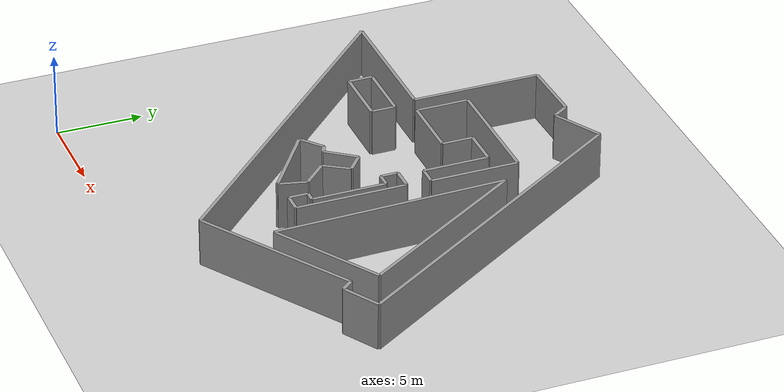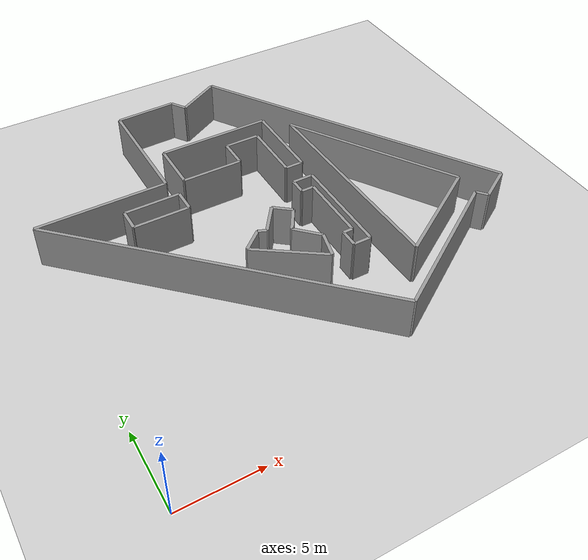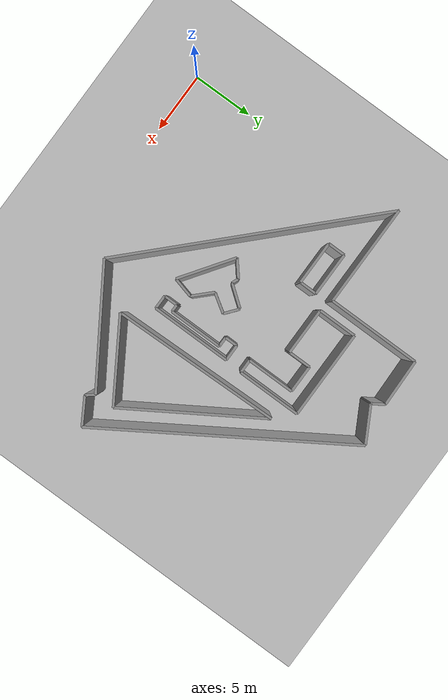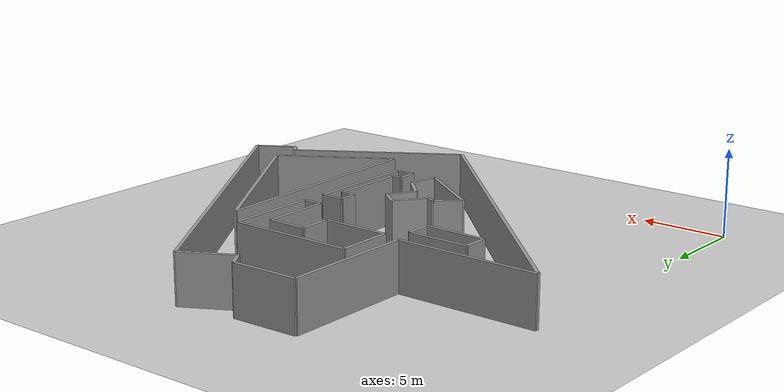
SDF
<?xml version="1.0" ?>

    <!-- this file is auto generated using pedsim_gazebo_plugin pkg -->
    <sdf version="1.5">
      <world name="default">

      <!-- Ground Plane -->

      <include>
        <uri>model://ground_plane</uri>
      </include>

      <include>
        <uri>model://sun</uri>
      </include>

     <model name='grey_wall_1'>
      <static>1</static>
      <link name='link'>

	  <pose frame=''>19.8 5.9  1.4 0 0 0.571337479834</pose>

        <collision name='collision'>
          <geometry>
            <box>

	     <size> 9.98599018626 .2  2.8 </size>

      	   </box>
          </geometry>
          <max_contacts>10</max_contacts>
          <surface>
            <contact>
              <ode/>
            </contact>
            <bounce/>
            <friction>
              <torsional>
                <ode/>
              </torsional>
              <ode/>
            </friction>
          </surface>
        </collision>
        <visual name='visual'>
          <cast_shadows>0</cast_shadows>
          <geometry>
            <box>

	     <size> 9.98599018626 .2  2.8 </size>

      	   </box>
       </geometry>
          <material>
            <script>
              <uri>model://grey_wall/materials/scripts</uri>
              <uri>model://grey_wall/materials/textures</uri>
              <name>vrc/grey_wall</name>
            </script>
          </material>
        </visual>
        <self_collide>0</self_collide>
        <enable_wind>0</enable_wind>
        <kinematic>0</kinematic>
      </link>
    </model>

     <model name='grey_wall_2'>
      <static>1</static>
      <link name='link'>

	  <pose frame=''>24.25 8.3  1.4 0 0 -0.876058050598</pose>

        <collision name='collision'>
          <geometry>
            <box>

	     <size> 0.781024967591 .2  2.8 </size>

      	   </box>
          </geometry>
          <max_contacts>10</max_contacts>
          <surface>
            <contact>
              <ode/>
            </contact>
            <bounce/>
            <friction>
              <torsional>
                <ode/>
              </torsional>
              <ode/>
            </friction>
          </surface>
        </collision>
        <visual name='visual'>
          <cast_shadows>0</cast_shadows>
          <geometry>
            <box>

	     <size> 0.781024967591 .2  2.8 </size>

      	   </box>
       </geometry>
          <material>
            <script>
              <uri>model://grey_wall/materials/scripts</uri>
              <uri>model://grey_wall/materials/textures</uri>
              <name>vrc/grey_wall</name>
            </script>
          </material>
        </visual>
        <self_collide>0</self_collide>
        <enable_wind>0</enable_wind>
        <kinematic>0</kinematic>
      </link>
    </model>

     <model name='grey_wall_3'>
      <static>1</static>
      <link name='link'>

	  <pose frame=''>25.5 8.6  1.4 0 0 0.540419500271</pose>

        <collision name='collision'>
          <geometry>
            <box>

	     <size> 2.33238075794 .2  2.8 </size>

      	   </box>
          </geometry>
          <max_contacts>10</max_contacts>
          <surface>
            <contact>
              <ode/>
            </contact>
            <bounce/>
            <friction>
              <torsional>
                <ode/>
              </torsional>
              <ode/>
            </friction>
          </surface>
        </collision>
        <visual name='visual'>
          <cast_shadows>0</cast_shadows>
          <geometry>
            <box>

	     <size> 2.33238075794 .2  2.8 </size>

      	   </box>
       </geometry>
          <material>
            <script>
              <uri>model://grey_wall/materials/scripts</uri>
              <uri>model://grey_wall/materials/textures</uri>
              <name>vrc/grey_wall</name>
            </script>
          </material>
        </visual>
        <self_collide>0</self_collide>
        <enable_wind>0</enable_wind>
        <kinematic>0</kinematic>
      </link>
    </model>

     <model name='grey_wall_4'>
      <static>1</static>
      <link name='link'>

	  <pose frame=''>20.9 17.95  1.4 0 0 -1.00148313569</pose>

        <collision name='collision'>
          <geometry>
            <box>

	     <size> 20.7771509115 .2  2.8 </size>

      	   </box>
          </geometry>
          <max_contacts>10</max_contacts>
          <surface>
            <contact>
              <ode/>
            </contact>
            <bounce/>
            <friction>
              <torsional>
                <ode/>
              </torsional>
              <ode/>
            </friction>
          </surface>
        </collision>
        <visual name='visual'>
          <cast_shadows>0</cast_shadows>
          <geometry>
            <box>

	     <size> 20.7771509115 .2  2.8 </size>

      	   </box>
       </geometry>
          <material>
            <script>
              <uri>model://grey_wall/materials/scripts</uri>
              <uri>model://grey_wall/materials/textures</uri>
              <name>vrc/grey_wall</name>
            </script>
          </material>
        </visual>
        <self_collide>0</self_collide>
        <enable_wind>0</enable_wind>
        <kinematic>0</kinematic>
      </link>
    </model>

     <model name='grey_wall_5'>
      <static>1</static>
      <link name='link'>

	  <pose frame=''>13.95 25.95  1.4 0 0 0.507098504392</pose>

        <collision name='collision'>
          <geometry>
            <box>

	     <size> 3.0886890423 .2  2.8 </size>

      	   </box>
          </geometry>
          <max_contacts>10</max_contacts>
          <surface>
            <contact>
              <ode/>
            </contact>
            <bounce/>
            <friction>
              <torsional>
                <ode/>
              </torsional>
              <ode/>
            </friction>
          </surface>
        </collision>
        <visual name='visual'>
          <cast_shadows>0</cast_shadows>
          <geometry>
            <box>

	     <size> 3.0886890423 .2  2.8 </size>

      	   </box>
       </geometry>
          <material>
            <script>
              <uri>model://grey_wall/materials/scripts</uri>
              <uri>model://grey_wall/materials/textures</uri>
              <name>vrc/grey_wall</name>
            </script>
          </material>
        </visual>
        <self_collide>0</self_collide>
        <enable_wind>0</enable_wind>
        <kinematic>0</kinematic>
      </link>
    </model>

     <model name='grey_wall_6'>
      <static>1</static>
      <link name='link'>

	  <pose frame=''>12.3 25.65  1.4 0 0 -0.982793723247</pose>

        <collision name='collision'>
          <geometry>
            <box>

	     <size> 1.08166538264 .2  2.8 </size>

      	   </box>
          </geometry>
          <max_contacts>10</max_contacts>
          <surface>
            <contact>
              <ode/>
            </contact>
            <bounce/>
            <friction>
              <torsional>
                <ode/>
              </torsional>
              <ode/>
            </friction>
          </surface>
        </collision>
        <visual name='visual'>
          <cast_shadows>0</cast_shadows>
          <geometry>
            <box>

	     <size> 1.08166538264 .2  2.8 </size>

      	   </box>
       </geometry>
          <material>
            <script>
              <uri>model://grey_wall/materials/scripts</uri>
              <uri>model://grey_wall/materials/textures</uri>
              <name>vrc/grey_wall</name>
            </script>
          </material>
        </visual>
        <self_collide>0</self_collide>
        <enable_wind>0</enable_wind>
        <kinematic>0</kinematic>
      </link>
    </model>

     <model name='grey_wall_7'>
      <static>1</static>
      <link name='link'>

	  <pose frame=''>10.1 26.05  1.4 0 0 0.0263097172529</pose>

        <collision name='collision'>
          <geometry>
            <box>

	     <size> 3.80131556175 .2  2.8 </size>

      	   </box>
          </geometry>
          <max_contacts>10</max_contacts>
          <surface>
            <contact>
              <ode/>
            </contact>
            <bounce/>
            <friction>
              <torsional>
                <ode/>
              </torsional>
              <ode/>
            </friction>
          </surface>
        </collision>
        <visual name='visual'>
          <cast_shadows>0</cast_shadows>
          <geometry>
            <box>

	     <size> 3.80131556175 .2  2.8 </size>

      	   </box>
       </geometry>
          <material>
            <script>
              <uri>model://grey_wall/materials/scripts</uri>
              <uri>model://grey_wall/materials/textures</uri>
              <name>vrc/grey_wall</name>
            </script>
          </material>
        </visual>
        <self_collide>0</self_collide>
        <enable_wind>0</enable_wind>
        <kinematic>0</kinematic>
      </link>
    </model>

     <model name='grey_wall_8'>
      <static>1</static>
      <link name='link'>

	  <pose frame=''>8.2 22.25  1.4 0 0 1.57</pose>

        <collision name='collision'>
          <geometry>
            <box>

	     <size> 7.5 .2  2.8 </size>

      	   </box>
          </geometry>
          <max_contacts>10</max_contacts>
          <surface>
            <contact>
              <ode/>
            </contact>
            <bounce/>
            <friction>
              <torsional>
                <ode/>
              </torsional>
              <ode/>
            </friction>
          </surface>
        </collision>
        <visual name='visual'>
          <cast_shadows>0</cast_shadows>
          <geometry>
            <box>

	     <size> 7.5 .2  2.8 </size>

      	   </box>
       </geometry>
          <material>
            <script>
              <uri>model://grey_wall/materials/scripts</uri>
              <uri>model://grey_wall/materials/textures</uri>
              <name>vrc/grey_wall</name>
            </script>
          </material>
        </visual>
        <self_collide>0</self_collide>
        <enable_wind>0</enable_wind>
        <kinematic>0</kinematic>
      </link>
    </model>

     <model name='grey_wall_9'>
      <static>1</static>
      <link name='link'>

	  <pose frame=''>4.1 18.5  1.4 0 0 0.0</pose>

        <collision name='collision'>
          <geometry>
            <box>

	     <size> 8.2 .2  2.8 </size>

      	   </box>
          </geometry>
          <max_contacts>10</max_contacts>
          <surface>
            <contact>
              <ode/>
            </contact>
            <bounce/>
            <friction>
              <torsional>
                <ode/>
              </torsional>
              <ode/>
            </friction>
          </surface>
        </collision>
        <visual name='visual'>
          <cast_shadows>0</cast_shadows>
          <geometry>
            <box>

	     <size> 8.2 .2  2.8 </size>

      	   </box>
       </geometry>
          <material>
            <script>
              <uri>model://grey_wall/materials/scripts</uri>
              <uri>model://grey_wall/materials/textures</uri>
              <name>vrc/grey_wall</name>
            </script>
          </material>
        </visual>
        <self_collide>0</self_collide>
        <enable_wind>0</enable_wind>
        <kinematic>0</kinematic>
      </link>
    </model>

     <model name='grey_wall_10'>
      <static>1</static>
      <link name='link'>

	  <pose frame=''>7.8 10.85  1.4 0 0 -0.775689730563</pose>

        <collision name='collision'>
          <geometry>
            <box>

	     <size> 21.8506292816 .2  2.8 </size>

      	   </box>
          </geometry>
          <max_contacts>10</max_contacts>
          <surface>
            <contact>
              <ode/>
            </contact>
            <bounce/>
            <friction>
              <torsional>
                <ode/>
              </torsional>
              <ode/>
            </friction>
          </surface>
        </collision>
        <visual name='visual'>
          <cast_shadows>0</cast_shadows>
          <geometry>
            <box>

	     <size> 21.8506292816 .2  2.8 </size>

      	   </box>
       </geometry>
          <material>
            <script>
              <uri>model://grey_wall/materials/scripts</uri>
              <uri>model://grey_wall/materials/textures</uri>
              <name>vrc/grey_wall</name>
            </script>
          </material>
        </visual>
        <self_collide>0</self_collide>
        <enable_wind>0</enable_wind>
        <kinematic>0</kinematic>
      </link>
    </model>

     <model name='grey_wall_11'>
      <static>1</static>
      <link name='link'>

	  <pose frame=''>13.9 9.1  1.4 0 0 1.32581766367</pose>

        <collision name='collision'>
          <geometry>
            <box>

	     <size> 1.64924225025 .2  2.8 </size>

      	   </box>
          </geometry>
          <max_contacts>10</max_contacts>
          <surface>
            <contact>
              <ode/>
            </contact>
            <bounce/>
            <friction>
              <torsional>
                <ode/>
              </torsional>
              <ode/>
            </friction>
          </surface>
        </collision>
        <visual name='visual'>
          <cast_shadows>0</cast_shadows>
          <geometry>
            <box>

	     <size> 1.64924225025 .2  2.8 </size>

      	   </box>
       </geometry>
          <material>
            <script>
              <uri>model://grey_wall/materials/scripts</uri>
              <uri>model://grey_wall/materials/textures</uri>
              <name>vrc/grey_wall</name>
            </script>
          </material>
        </visual>
        <self_collide>0</self_collide>
        <enable_wind>0</enable_wind>
        <kinematic>0</kinematic>
      </link>
    </model>

     <model name='grey_wall_12'>
      <static>1</static>
      <link name='link'>

	  <pose frame=''>13.45 10.55  1.4 0 0 -0.785398163397</pose>

        <collision name='collision'>
          <geometry>
            <box>

	     <size> 1.83847763109 .2  2.8 </size>

      	   </box>
          </geometry>
          <max_contacts>10</max_contacts>
          <surface>
            <contact>
              <ode/>
            </contact>
            <bounce/>
            <friction>
              <torsional>
                <ode/>
              </torsional>
              <ode/>
            </friction>
          </surface>
        </collision>
        <visual name='visual'>
          <cast_shadows>0</cast_shadows>
          <geometry>
            <box>

	     <size> 1.83847763109 .2  2.8 </size>

      	   </box>
       </geometry>
          <material>
            <script>
              <uri>model://grey_wall/materials/scripts</uri>
              <uri>model://grey_wall/materials/textures</uri>
              <name>vrc/grey_wall</name>
            </script>
          </material>
        </visual>
        <self_collide>0</self_collide>
        <enable_wind>0</enable_wind>
        <kinematic>0</kinematic>
      </link>
    </model>

     <model name='grey_wall_13'>
      <static>1</static>
      <link name='link'>

	  <pose frame=''>13.25 11.9  1.4 0 0 0.999458846961</pose>

        <collision name='collision'>
          <geometry>
            <box>

	     <size> 1.66433169771 .2  2.8 </size>

      	   </box>
          </geometry>
          <max_contacts>10</max_contacts>
          <surface>
            <contact>
              <ode/>
            </contact>
            <bounce/>
            <friction>
              <torsional>
                <ode/>
              </torsional>
              <ode/>
            </friction>
          </surface>
        </collision>
        <visual name='visual'>
          <cast_shadows>0</cast_shadows>
          <geometry>
            <box>

	     <size> 1.66433169771 .2  2.8 </size>

      	   </box>
       </geometry>
          <material>
            <script>
              <uri>model://grey_wall/materials/scripts</uri>
              <uri>model://grey_wall/materials/textures</uri>
              <name>vrc/grey_wall</name>
            </script>
          </material>
        </visual>
        <self_collide>0</self_collide>
        <enable_wind>0</enable_wind>
        <kinematic>0</kinematic>
      </link>
    </model>

     <model name='grey_wall_14'>
      <static>1</static>
      <link name='link'>

	  <pose frame=''>13.2 13.0  1.4 0 0 -0.674740942224</pose>

        <collision name='collision'>
          <geometry>
            <box>

	     <size> 1.28062484749 .2  2.8 </size>

      	   </box>
          </geometry>
          <max_contacts>10</max_contacts>
          <surface>
            <contact>
              <ode/>
            </contact>
            <bounce/>
            <friction>
              <torsional>
                <ode/>
              </torsional>
              <ode/>
            </friction>
          </surface>
        </collision>
        <visual name='visual'>
          <cast_shadows>0</cast_shadows>
          <geometry>
            <box>

	     <size> 1.28062484749 .2  2.8 </size>

      	   </box>
       </geometry>
          <material>
            <script>
              <uri>model://grey_wall/materials/scripts</uri>
              <uri>model://grey_wall/materials/textures</uri>
              <name>vrc/grey_wall</name>
            </script>
          </material>
        </visual>
        <self_collide>0</self_collide>
        <enable_wind>0</enable_wind>
        <kinematic>0</kinematic>
      </link>
    </model>

     <model name='grey_wall_15'>
      <static>1</static>
      <link name='link'>

	  <pose frame=''>12.1 12.6  1.4 0 0 0.927295218002</pose>

        <collision name='collision'>
          <geometry>
            <box>

	     <size> 2.0 .2  2.8 </size>

      	   </box>
          </geometry>
          <max_contacts>10</max_contacts>
          <surface>
            <contact>
              <ode/>
            </contact>
            <bounce/>
            <friction>
              <torsional>
                <ode/>
              </torsional>
              <ode/>
            </friction>
          </surface>
        </collision>
        <visual name='visual'>
          <cast_shadows>0</cast_shadows>
          <geometry>
            <box>

	     <size> 2.0 .2  2.8 </size>

      	   </box>
       </geometry>
          <material>
            <script>
              <uri>model://grey_wall/materials/scripts</uri>
              <uri>model://grey_wall/materials/textures</uri>
              <name>vrc/grey_wall</name>
            </script>
          </material>
        </visual>
        <self_collide>0</self_collide>
        <enable_wind>0</enable_wind>
        <kinematic>0</kinematic>
      </link>
    </model>

     <model name='grey_wall_16'>
      <static>1</static>
      <link name='link'>

	  <pose frame=''>11.25 11.9  1.4 0 0 -0.380506377112</pose>

        <collision name='collision'>
          <geometry>
            <box>

	     <size> 0.538516480713 .2  2.8 </size>

      	   </box>
          </geometry>
          <max_contacts>10</max_contacts>
          <surface>
            <contact>
              <ode/>
            </contact>
            <bounce/>
            <friction>
              <torsional>
                <ode/>
              </torsional>
              <ode/>
            </friction>
          </surface>
        </collision>
        <visual name='visual'>
          <cast_shadows>0</cast_shadows>
          <geometry>
            <box>

	     <size> 0.538516480713 .2  2.8 </size>

      	   </box>
       </geometry>
          <material>
            <script>
              <uri>model://grey_wall/materials/scripts</uri>
              <uri>model://grey_wall/materials/textures</uri>
              <name>vrc/grey_wall</name>
            </script>
          </material>
        </visual>
        <self_collide>0</self_collide>
        <enable_wind>0</enable_wind>
        <kinematic>0</kinematic>
      </link>
    </model>

     <model name='grey_wall_17'>
      <static>1</static>
      <link name='link'>

	  <pose frame=''>10.4 11.5  1.4 0 0 0.694738276197</pose>

        <collision name='collision'>
          <geometry>
            <box>

	     <size> 1.56204993518 .2  2.8 </size>

      	   </box>
          </geometry>
          <max_contacts>10</max_contacts>
          <surface>
            <contact>
              <ode/>
            </contact>
            <bounce/>
            <friction>
              <torsional>
                <ode/>
              </torsional>
              <ode/>
            </friction>
          </surface>
        </collision>
        <visual name='visual'>
          <cast_shadows>0</cast_shadows>
          <geometry>
            <box>

	     <size> 1.56204993518 .2  2.8 </size>

      	   </box>
       </geometry>
          <material>
            <script>
              <uri>model://grey_wall/materials/scripts</uri>
              <uri>model://grey_wall/materials/textures</uri>
              <name>vrc/grey_wall</name>
            </script>
          </material>
        </visual>
        <self_collide>0</self_collide>
        <enable_wind>0</enable_wind>
        <kinematic>0</kinematic>
      </link>
    </model>

     <model name='grey_wall_18'>
      <static>1</static>
      <link name='link'>

	  <pose frame=''>11.75 9.65  1.4 0 0 -0.605544663605</pose>

        <collision name='collision'>
          <geometry>
            <box>

	     <size> 4.74341649025 .2  2.8 </size>

      	   </box>
          </geometry>
          <max_contacts>10</max_contacts>
          <surface>
            <contact>
              <ode/>
            </contact>
            <bounce/>
            <friction>
              <torsional>
                <ode/>
              </torsional>
              <ode/>
            </friction>
          </surface>
        </collision>
        <visual name='visual'>
          <cast_shadows>0</cast_shadows>
          <geometry>
            <box>

	     <size> 4.74341649025 .2  2.8 </size>

      	   </box>
       </geometry>
          <material>
            <script>
              <uri>model://grey_wall/materials/scripts</uri>
              <uri>model://grey_wall/materials/textures</uri>
              <name>vrc/grey_wall</name>
            </script>
          </material>
        </visual>
        <self_collide>0</self_collide>
        <enable_wind>0</enable_wind>
        <kinematic>0</kinematic>
      </link>
    </model>

     <model name='grey_wall_19'>
      <static>1</static>
      <link name='link'>

	  <pose frame=''>15.75 8.4  1.4 0 0 0.0</pose>

        <collision name='collision'>
          <geometry>
            <box>

	     <size> 1.1 .2  2.8 </size>

      	   </box>
          </geometry>
          <max_contacts>10</max_contacts>
          <surface>
            <contact>
              <ode/>
            </contact>
            <bounce/>
            <friction>
              <torsional>
                <ode/>
              </torsional>
              <ode/>
            </friction>
          </surface>
        </collision>
        <visual name='visual'>
          <cast_shadows>0</cast_shadows>
          <geometry>
            <box>

	     <size> 1.1 .2  2.8 </size>

      	   </box>
       </geometry>
          <material>
            <script>
              <uri>model://grey_wall/materials/scripts</uri>
              <uri>model://grey_wall/materials/textures</uri>
              <name>vrc/grey_wall</name>
            </script>
          </material>
        </visual>
        <self_collide>0</self_collide>
        <enable_wind>0</enable_wind>
        <kinematic>0</kinematic>
      </link>
    </model>

     <model name='grey_wall_20'>
      <static>1</static>
      <link name='link'>

	  <pose frame=''>16.3 11.6  1.4 0 0 1.57</pose>

        <collision name='collision'>
          <geometry>
            <box>

	     <size> 6.4 .2  2.8 </size>

      	   </box>
          </geometry>
          <max_contacts>10</max_contacts>
          <surface>
            <contact>
              <ode/>
            </contact>
            <bounce/>
            <friction>
              <torsional>
                <ode/>
              </torsional>
              <ode/>
            </friction>
          </surface>
        </collision>
        <visual name='visual'>
          <cast_shadows>0</cast_shadows>
          <geometry>
            <box>

	     <size> 6.4 .2  2.8 </size>

      	   </box>
       </geometry>
          <material>
            <script>
              <uri>model://grey_wall/materials/scripts</uri>
              <uri>model://grey_wall/materials/textures</uri>
              <name>vrc/grey_wall</name>
            </script>
          </material>
        </visual>
        <self_collide>0</self_collide>
        <enable_wind>0</enable_wind>
        <kinematic>0</kinematic>
      </link>
    </model>

     <model name='grey_wall_21'>
      <static>1</static>
      <link name='link'>

	  <pose frame=''>15.65 14.8  1.4 0 0 -0.0</pose>

        <collision name='collision'>
          <geometry>
            <box>

	     <size> 1.3 .2  2.8 </size>

      	   </box>
          </geometry>
          <max_contacts>10</max_contacts>
          <surface>
            <contact>
              <ode/>
            </contact>
            <bounce/>
            <friction>
              <torsional>
                <ode/>
              </torsional>
              <ode/>
            </friction>
          </surface>
        </collision>
        <visual name='visual'>
          <cast_shadows>0</cast_shadows>
          <geometry>
            <box>

	     <size> 1.3 .2  2.8 </size>

      	   </box>
       </geometry>
          <material>
            <script>
              <uri>model://grey_wall/materials/scripts</uri>
              <uri>model://grey_wall/materials/textures</uri>
              <name>vrc/grey_wall</name>
            </script>
          </material>
        </visual>
        <self_collide>0</self_collide>
        <enable_wind>0</enable_wind>
        <kinematic>0</kinematic>
      </link>
    </model>

     <model name='grey_wall_22'>
      <static>1</static>
      <link name='link'>

	  <pose frame=''>15.0 14.3  1.4 0 0 1.57</pose>

        <collision name='collision'>
          <geometry>
            <box>

	     <size> 1.0 .2  2.8 </size>

      	   </box>
          </geometry>
          <max_contacts>10</max_contacts>
          <surface>
            <contact>
              <ode/>
            </contact>
            <bounce/>
            <friction>
              <torsional>
                <ode/>
              </torsional>
              <ode/>
            </friction>
          </surface>
        </collision>
        <visual name='visual'>
          <cast_shadows>0</cast_shadows>
          <geometry>
            <box>

	     <size> 1.0 .2  2.8 </size>

      	   </box>
       </geometry>
          <material>
            <script>
              <uri>model://grey_wall/materials/scripts</uri>
              <uri>model://grey_wall/materials/textures</uri>
              <name>vrc/grey_wall</name>
            </script>
          </material>
        </visual>
        <self_collide>0</self_collide>
        <enable_wind>0</enable_wind>
        <kinematic>0</kinematic>
      </link>
    </model>

     <model name='grey_wall_23'>
      <static>1</static>
      <link name='link'>

	  <pose frame=''>15.4 13.8  1.4 0 0 0.0</pose>

        <collision name='collision'>
          <geometry>
            <box>

	     <size> 0.8 .2  2.8 </size>

      	   </box>
          </geometry>
          <max_contacts>10</max_contacts>
          <surface>
            <contact>
              <ode/>
            </contact>
            <bounce/>
            <friction>
              <torsional>
                <ode/>
              </torsional>
              <ode/>
            </friction>
          </surface>
        </collision>
        <visual name='visual'>
          <cast_shadows>0</cast_shadows>
          <geometry>
            <box>

	     <size> 0.8 .2  2.8 </size>

      	   </box>
       </geometry>
          <material>
            <script>
              <uri>model://grey_wall/materials/scripts</uri>
              <uri>model://grey_wall/materials/textures</uri>
              <name>vrc/grey_wall</name>
            </script>
          </material>
        </visual>
        <self_collide>0</self_collide>
        <enable_wind>0</enable_wind>
        <kinematic>0</kinematic>
      </link>
    </model>

     <model name='grey_wall_24'>
      <static>1</static>
      <link name='link'>

	  <pose frame=''>15.8 11.65  1.4 0 0 1.57</pose>

        <collision name='collision'>
          <geometry>
            <box>

	     <size> 4.3 .2  2.8 </size>

      	   </box>
          </geometry>
          <max_contacts>10</max_contacts>
          <surface>
            <contact>
              <ode/>
            </contact>
            <bounce/>
            <friction>
              <torsional>
                <ode/>
              </torsional>
              <ode/>
            </friction>
          </surface>
        </collision>
        <visual name='visual'>
          <cast_shadows>0</cast_shadows>
          <geometry>
            <box>

	     <size> 4.3 .2  2.8 </size>

      	   </box>
       </geometry>
          <material>
            <script>
              <uri>model://grey_wall/materials/scripts</uri>
              <uri>model://grey_wall/materials/textures</uri>
              <name>vrc/grey_wall</name>
            </script>
          </material>
        </visual>
        <self_collide>0</self_collide>
        <enable_wind>0</enable_wind>
        <kinematic>0</kinematic>
      </link>
    </model>

     <model name='grey_wall_25'>
      <static>1</static>
      <link name='link'>

	  <pose frame=''>15.5 9.5  1.4 0 0 -0.0</pose>

        <collision name='collision'>
          <geometry>
            <box>

	     <size> 0.6 .2  2.8 </size>

      	   </box>
          </geometry>
          <max_contacts>10</max_contacts>
          <surface>
            <contact>
              <ode/>
            </contact>
            <bounce/>
            <friction>
              <torsional>
                <ode/>
              </torsional>
              <ode/>
            </friction>
          </surface>
        </collision>
        <visual name='visual'>
          <cast_shadows>0</cast_shadows>
          <geometry>
            <box>

	     <size> 0.6 .2  2.8 </size>

      	   </box>
       </geometry>
          <material>
            <script>
              <uri>model://grey_wall/materials/scripts</uri>
              <uri>model://grey_wall/materials/textures</uri>
              <name>vrc/grey_wall</name>
            </script>
          </material>
        </visual>
        <self_collide>0</self_collide>
        <enable_wind>0</enable_wind>
        <kinematic>0</kinematic>
      </link>
    </model>

     <model name='grey_wall_26'>
      <static>1</static>
      <link name='link'>

	  <pose frame=''>15.2 8.95  1.4 0 0 1.57</pose>

        <collision name='collision'>
          <geometry>
            <box>

	     <size> 1.1 .2  2.8 </size>

      	   </box>
          </geometry>
          <max_contacts>10</max_contacts>
          <surface>
            <contact>
              <ode/>
            </contact>
            <bounce/>
            <friction>
              <torsional>
                <ode/>
              </torsional>
              <ode/>
            </friction>
          </surface>
        </collision>
        <visual name='visual'>
          <cast_shadows>0</cast_shadows>
          <geometry>
            <box>

	     <size> 1.1 .2  2.8 </size>

      	   </box>
       </geometry>
          <material>
            <script>
              <uri>model://grey_wall/materials/scripts</uri>
              <uri>model://grey_wall/materials/textures</uri>
              <name>vrc/grey_wall</name>
            </script>
          </material>
        </visual>
        <self_collide>0</self_collide>
        <enable_wind>0</enable_wind>
        <kinematic>0</kinematic>
      </link>
    </model>

     <model name='grey_wall_27'>
      <static>1</static>
      <link name='link'>

	  <pose frame=''>15.75 8.4  1.4 0 0 0.0</pose>

        <collision name='collision'>
          <geometry>
            <box>

	     <size> 1.1 .2  2.8 </size>

      	   </box>
          </geometry>
          <max_contacts>10</max_contacts>
          <surface>
            <contact>
              <ode/>
            </contact>
            <bounce/>
            <friction>
              <torsional>
                <ode/>
              </torsional>
              <ode/>
            </friction>
          </surface>
        </collision>
        <visual name='visual'>
          <cast_shadows>0</cast_shadows>
          <geometry>
            <box>

	     <size> 1.1 .2  2.8 </size>

      	   </box>
       </geometry>
          <material>
            <script>
              <uri>model://grey_wall/materials/scripts</uri>
              <uri>model://grey_wall/materials/textures</uri>
              <name>vrc/grey_wall</name>
            </script>
          </material>
        </visual>
        <self_collide>0</self_collide>
        <enable_wind>0</enable_wind>
        <kinematic>0</kinematic>
      </link>
    </model>

     <model name='grey_wall_28'>
      <static>1</static>
      <link name='link'>

	  <pose frame=''>21.05 8.35  1.4 0 0 0.560121384183</pose>

        <collision name='collision'>
          <geometry>
            <box>

	     <size> 6.96419413859 .2  2.8 </size>

      	   </box>
          </geometry>
          <max_contacts>10</max_contacts>
          <surface>
            <contact>
              <ode/>
            </contact>
            <bounce/>
            <friction>
              <torsional>
                <ode/>
              </torsional>
              <ode/>
            </friction>
          </surface>
        </collision>
        <visual name='visual'>
          <cast_shadows>0</cast_shadows>
          <geometry>
            <box>

	     <size> 6.96419413859 .2  2.8 </size>

      	   </box>
       </geometry>
          <material>
            <script>
              <uri>model://grey_wall/materials/scripts</uri>
              <uri>model://grey_wall/materials/textures</uri>
              <name>vrc/grey_wall</name>
            </script>
          </material>
        </visual>
        <self_collide>0</self_collide>
        <enable_wind>0</enable_wind>
        <kinematic>0</kinematic>
      </link>
    </model>

     <model name='grey_wall_29'>
      <static>1</static>
      <link name='link'>

	  <pose frame=''>17.95 13.25  1.4 0 0 -1.54857776147</pose>

        <collision name='collision'>
          <geometry>
            <box>

	     <size> 13.5033329219 .2  2.8 </size>

      	   </box>
          </geometry>
          <max_contacts>10</max_contacts>
          <surface>
            <contact>
              <ode/>
            </contact>
            <bounce/>
            <friction>
              <torsional>
                <ode/>
              </torsional>
              <ode/>
            </friction>
          </surface>
        </collision>
        <visual name='visual'>
          <cast_shadows>0</cast_shadows>
          <geometry>
            <box>

	     <size> 13.5033329219 .2  2.8 </size>

      	   </box>
       </geometry>
          <material>
            <script>
              <uri>model://grey_wall/materials/scripts</uri>
              <uri>model://grey_wall/materials/textures</uri>
              <name>vrc/grey_wall</name>
            </script>
          </material>
        </visual>
        <self_collide>0</self_collide>
        <enable_wind>0</enable_wind>
        <kinematic>0</kinematic>
      </link>
    </model>

     <model name='grey_wall_30'>
      <static>1</static>
      <link name='link'>

	  <pose frame=''>21.05 8.35  1.4 0 0 0.560121384183</pose>

        <collision name='collision'>
          <geometry>
            <box>

	     <size> 6.96419413859 .2  2.8 </size>

      	   </box>
          </geometry>
          <max_contacts>10</max_contacts>
          <surface>
            <contact>
              <ode/>
            </contact>
            <bounce/>
            <friction>
              <torsional>
                <ode/>
              </torsional>
              <ode/>
            </friction>
          </surface>
        </collision>
        <visual name='visual'>
          <cast_shadows>0</cast_shadows>
          <geometry>
            <box>

	     <size> 6.96419413859 .2  2.8 </size>

      	   </box>
       </geometry>
          <material>
            <script>
              <uri>model://grey_wall/materials/scripts</uri>
              <uri>model://grey_wall/materials/textures</uri>
              <name>vrc/grey_wall</name>
            </script>
          </material>
        </visual>
        <self_collide>0</self_collide>
        <enable_wind>0</enable_wind>
        <kinematic>0</kinematic>
      </link>
    </model>

     <model name='grey_wall_31'>
      <static>1</static>
      <link name='link'>

	  <pose frame=''>20.9 15.1  1.4 0 0 -1.00671260575</pose>

        <collision name='collision'>
          <geometry>
            <box>

	     <size> 11.5965512115 .2  2.8 </size>

      	   </box>
          </geometry>
          <max_contacts>10</max_contacts>
          <surface>
            <contact>
              <ode/>
            </contact>
            <bounce/>
            <friction>
              <torsional>
                <ode/>
              </torsional>
              <ode/>
            </friction>
          </surface>
        </collision>
        <visual name='visual'>
          <cast_shadows>0</cast_shadows>
          <geometry>
            <box>

	     <size> 11.5965512115 .2  2.8 </size>

      	   </box>
       </geometry>
          <material>
            <script>
              <uri>model://grey_wall/materials/scripts</uri>
              <uri>model://grey_wall/materials/textures</uri>
              <name>vrc/grey_wall</name>
            </script>
          </material>
        </visual>
        <self_collide>0</self_collide>
        <enable_wind>0</enable_wind>
        <kinematic>0</kinematic>
      </link>
    </model>

     <model name='grey_wall_32'>
      <static>1</static>
      <link name='link'>

	  <pose frame=''>8.5 16.5  1.4 0 0 1.57</pose>

        <collision name='collision'>
          <geometry>
            <box>

	     <size> 1.4 .2  2.8 </size>

      	   </box>
          </geometry>
          <max_contacts>10</max_contacts>
          <surface>
            <contact>
              <ode/>
            </contact>
            <bounce/>
            <friction>
              <torsional>
                <ode/>
              </torsional>
              <ode/>
            </friction>
          </surface>
        </collision>
        <visual name='visual'>
          <cast_shadows>0</cast_shadows>
          <geometry>
            <box>

	     <size> 1.4 .2  2.8 </size>

      	   </box>
       </geometry>
          <material>
            <script>
              <uri>model://grey_wall/materials/scripts</uri>
              <uri>model://grey_wall/materials/textures</uri>
              <name>vrc/grey_wall</name>
            </script>
          </material>
        </visual>
        <self_collide>0</self_collide>
        <enable_wind>0</enable_wind>
        <kinematic>0</kinematic>
      </link>
    </model>

     <model name='grey_wall_33'>
      <static>1</static>
      <link name='link'>

	  <pose frame=''>6.75 17.2  1.4 0 0 0.0</pose>

        <collision name='collision'>
          <geometry>
            <box>

	     <size> 3.5 .2  2.8 </size>

      	   </box>
          </geometry>
          <max_contacts>10</max_contacts>
          <surface>
            <contact>
              <ode/>
            </contact>
            <bounce/>
            <friction>
              <torsional>
                <ode/>
              </torsional>
              <ode/>
            </friction>
          </surface>
        </collision>
        <visual name='visual'>
          <cast_shadows>0</cast_shadows>
          <geometry>
            <box>

	     <size> 3.5 .2  2.8 </size>

      	   </box>
       </geometry>
          <material>
            <script>
              <uri>model://grey_wall/materials/scripts</uri>
              <uri>model://grey_wall/materials/textures</uri>
              <name>vrc/grey_wall</name>
            </script>
          </material>
        </visual>
        <self_collide>0</self_collide>
        <enable_wind>0</enable_wind>
        <kinematic>0</kinematic>
      </link>
    </model>

     <model name='grey_wall_34'>
      <static>1</static>
      <link name='link'>

	  <pose frame=''>5.0 16.5  1.4 0 0 1.57</pose>

        <collision name='collision'>
          <geometry>
            <box>

	     <size> 1.4 .2  2.8 </size>

      	   </box>
          </geometry>
          <max_contacts>10</max_contacts>
          <surface>
            <contact>
              <ode/>
            </contact>
            <bounce/>
            <friction>
              <torsional>
                <ode/>
              </torsional>
              <ode/>
            </friction>
          </surface>
        </collision>
        <visual name='visual'>
          <cast_shadows>0</cast_shadows>
          <geometry>
            <box>

	     <size> 1.4 .2  2.8 </size>

      	   </box>
       </geometry>
          <material>
            <script>
              <uri>model://grey_wall/materials/scripts</uri>
              <uri>model://grey_wall/materials/textures</uri>
              <name>vrc/grey_wall</name>
            </script>
          </material>
        </visual>
        <self_collide>0</self_collide>
        <enable_wind>0</enable_wind>
        <kinematic>0</kinematic>
      </link>
    </model>

     <model name='grey_wall_35'>
      <static>1</static>
      <link name='link'>

	  <pose frame=''>6.75 15.8  1.4 0 0 -0.0</pose>

        <collision name='collision'>
          <geometry>
            <box>

	     <size> 3.5 .2  2.8 </size>

      	   </box>
          </geometry>
          <max_contacts>10</max_contacts>
          <surface>
            <contact>
              <ode/>
            </contact>
            <bounce/>
            <friction>
              <torsional>
                <ode/>
              </torsional>
              <ode/>
            </friction>
          </surface>
        </collision>
        <visual name='visual'>
          <cast_shadows>0</cast_shadows>
          <geometry>
            <box>

	     <size> 3.5 .2  2.8 </size>

      	   </box>
       </geometry>
          <material>
            <script>
              <uri>model://grey_wall/materials/scripts</uri>
              <uri>model://grey_wall/materials/textures</uri>
              <name>vrc/grey_wall</name>
            </script>
          </material>
        </visual>
        <self_collide>0</self_collide>
        <enable_wind>0</enable_wind>
        <kinematic>0</kinematic>
      </link>
    </model>

     <model name='grey_wall_36'>
      <static>1</static>
      <link name='link'>

	  <pose frame=''>15.85 16.2  1.4 0 0 0.0</pose>

        <collision name='collision'>
          <geometry>
            <box>

	     <size> 1.1 .2  2.8 </size>

      	   </box>
          </geometry>
          <max_contacts>10</max_contacts>
          <surface>
            <contact>
              <ode/>
            </contact>
            <bounce/>
            <friction>
              <torsional>
                <ode/>
              </torsional>
              <ode/>
            </friction>
          </surface>
        </collision>
        <visual name='visual'>
          <cast_shadows>0</cast_shadows>
          <geometry>
            <box>

	     <size> 1.1 .2  2.8 </size>

      	   </box>
       </geometry>
          <material>
            <script>
              <uri>model://grey_wall/materials/scripts</uri>
              <uri>model://grey_wall/materials/textures</uri>
              <name>vrc/grey_wall</name>
            </script>
          </material>
        </visual>
        <self_collide>0</self_collide>
        <enable_wind>0</enable_wind>
        <kinematic>0</kinematic>
      </link>
    </model>

     <model name='grey_wall_37'>
      <static>1</static>
      <link name='link'>

	  <pose frame=''>16.4 18.75  1.4 0 0 1.57</pose>

        <collision name='collision'>
          <geometry>
            <box>

	     <size> 5.1 .2  2.8 </size>

      	   </box>
          </geometry>
          <max_contacts>10</max_contacts>
          <surface>
            <contact>
              <ode/>
            </contact>
            <bounce/>
            <friction>
              <torsional>
                <ode/>
              </torsional>
              <ode/>
            </friction>
          </surface>
        </collision>
        <visual name='visual'>
          <cast_shadows>0</cast_shadows>
          <geometry>
            <box>

	     <size> 5.1 .2  2.8 </size>

      	   </box>
       </geometry>
          <material>
            <script>
              <uri>model://grey_wall/materials/scripts</uri>
              <uri>model://grey_wall/materials/textures</uri>
              <name>vrc/grey_wall</name>
            </script>
          </material>
        </visual>
        <self_collide>0</self_collide>
        <enable_wind>0</enable_wind>
        <kinematic>0</kinematic>
      </link>
    </model>

     <model name='grey_wall_38'>
      <static>1</static>
      <link name='link'>

	  <pose frame=''>12.85 21.3  1.4 0 0 -0.0</pose>

        <collision name='collision'>
          <geometry>
            <box>

	     <size> 7.1 .2  2.8 </size>

      	   </box>
          </geometry>
          <max_contacts>10</max_contacts>
          <surface>
            <contact>
              <ode/>
            </contact>
            <bounce/>
            <friction>
              <torsional>
                <ode/>
              </torsional>
              <ode/>
            </friction>
          </surface>
        </collision>
        <visual name='visual'>
          <cast_shadows>0</cast_shadows>
          <geometry>
            <box>

	     <size> 7.1 .2  2.8 </size>

      	   </box>
       </geometry>
          <material>
            <script>
              <uri>model://grey_wall/materials/scripts</uri>
              <uri>model://grey_wall/materials/textures</uri>
              <name>vrc/grey_wall</name>
            </script>
          </material>
        </visual>
        <self_collide>0</self_collide>
        <enable_wind>0</enable_wind>
        <kinematic>0</kinematic>
      </link>
    </model>

     <model name='grey_wall_39'>
      <static>1</static>
      <link name='link'>

	  <pose frame=''>9.3 19.75  1.4 0 0 1.57</pose>

        <collision name='collision'>
          <geometry>
            <box>

	     <size> 3.1 .2  2.8 </size>

      	   </box>
          </geometry>
          <max_contacts>10</max_contacts>
          <surface>
            <contact>
              <ode/>
            </contact>
            <bounce/>
            <friction>
              <torsional>
                <ode/>
              </torsional>
              <ode/>
            </friction>
          </surface>
        </collision>
        <visual name='visual'>
          <cast_shadows>0</cast_shadows>
          <geometry>
            <box>

	     <size> 3.1 .2  2.8 </size>

      	   </box>
       </geometry>
          <material>
            <script>
              <uri>model://grey_wall/materials/scripts</uri>
              <uri>model://grey_wall/materials/textures</uri>
              <name>vrc/grey_wall</name>
            </script>
          </material>
        </visual>
        <self_collide>0</self_collide>
        <enable_wind>0</enable_wind>
        <kinematic>0</kinematic>
      </link>
    </model>

     <model name='grey_wall_40'>
      <static>1</static>
      <link name='link'>

	  <pose frame=''>11.2 18.2  1.4 0 0 0.0</pose>

        <collision name='collision'>
          <geometry>
            <box>

	     <size> 3.8 .2  2.8 </size>

      	   </box>
          </geometry>
          <max_contacts>10</max_contacts>
          <surface>
            <contact>
              <ode/>
            </contact>
            <bounce/>
            <friction>
              <torsional>
                <ode/>
              </torsional>
              <ode/>
            </friction>
          </surface>
        </collision>
        <visual name='visual'>
          <cast_shadows>0</cast_shadows>
          <geometry>
            <box>

	     <size> 3.8 .2  2.8 </size>

      	   </box>
       </geometry>
          <material>
            <script>
              <uri>model://grey_wall/materials/scripts</uri>
              <uri>model://grey_wall/materials/textures</uri>
              <name>vrc/grey_wall</name>
            </script>
          </material>
        </visual>
        <self_collide>0</self_collide>
        <enable_wind>0</enable_wind>
        <kinematic>0</kinematic>
      </link>
    </model>

     <model name='grey_wall_41'>
      <static>1</static>
      <link name='link'>

	  <pose frame=''>13.1 19.1  1.4 0 0 1.57</pose>

        <collision name='collision'>
          <geometry>
            <box>

	     <size> 1.8 .2  2.8 </size>

      	   </box>
          </geometry>
          <max_contacts>10</max_contacts>
          <surface>
            <contact>
              <ode/>
            </contact>
            <bounce/>
            <friction>
              <torsional>
                <ode/>
              </torsional>
              <ode/>
            </friction>
          </surface>
        </collision>
        <visual name='visual'>
          <cast_shadows>0</cast_shadows>
          <geometry>
            <box>

	     <size> 1.8 .2  2.8 </size>

      	   </box>
       </geometry>
          <material>
            <script>
              <uri>model://grey_wall/materials/scripts</uri>
              <uri>model://grey_wall/materials/textures</uri>
              <name>vrc/grey_wall</name>
            </script>
          </material>
        </visual>
        <self_collide>0</self_collide>
        <enable_wind>0</enable_wind>
        <kinematic>0</kinematic>
      </link>
    </model>

     <model name='grey_wall_42'>
      <static>1</static>
      <link name='link'>

	  <pose frame=''>14.2 20.0  1.4 0 0 0.0</pose>

        <collision name='collision'>
          <geometry>
            <box>

	     <size> 2.2 .2  2.8 </size>

      	   </box>
          </geometry>
          <max_contacts>10</max_contacts>
          <surface>
            <contact>
              <ode/>
            </contact>
            <bounce/>
            <friction>
              <torsional>
                <ode/>
              </torsional>
              <ode/>
            </friction>
          </surface>
        </collision>
        <visual name='visual'>
          <cast_shadows>0</cast_shadows>
          <geometry>
            <box>

	     <size> 2.2 .2  2.8 </size>

      	   </box>
       </geometry>
          <material>
            <script>
              <uri>model://grey_wall/materials/scripts</uri>
              <uri>model://grey_wall/materials/textures</uri>
              <name>vrc/grey_wall</name>
            </script>
          </material>
        </visual>
        <self_collide>0</self_collide>
        <enable_wind>0</enable_wind>
        <kinematic>0</kinematic>
      </link>
    </model>

     <model name='grey_wall_43'>
      <static>1</static>
      <link name='link'>

	  <pose frame=''>15.3 18.1  1.4 0 0 1.57</pose>

        <collision name='collision'>
          <geometry>
            <box>

	     <size> 3.8 .2  2.8 </size>

      	   </box>
          </geometry>
          <max_contacts>10</max_contacts>
          <surface>
            <contact>
              <ode/>
            </contact>
            <bounce/>
            <friction>
              <torsional>
                <ode/>
              </torsional>
              <ode/>
            </friction>
          </surface>
        </collision>
        <visual name='visual'>
          <cast_shadows>0</cast_shadows>
          <geometry>
            <box>

	     <size> 3.8 .2  2.8 </size>

      	   </box>
       </geometry>
          <material>
            <script>
              <uri>model://grey_wall/materials/scripts</uri>
              <uri>model://grey_wall/materials/textures</uri>
              <name>vrc/grey_wall</name>
            </script>
          </material>
        </visual>
        <self_collide>0</self_collide>
        <enable_wind>0</enable_wind>
        <kinematic>0</kinematic>
      </link>
    </model>

            <plugin name="ActorPosesPlugin" filename="libActorPosesPlugin.so">
        </plugin>

      </world>
    </sdf>
